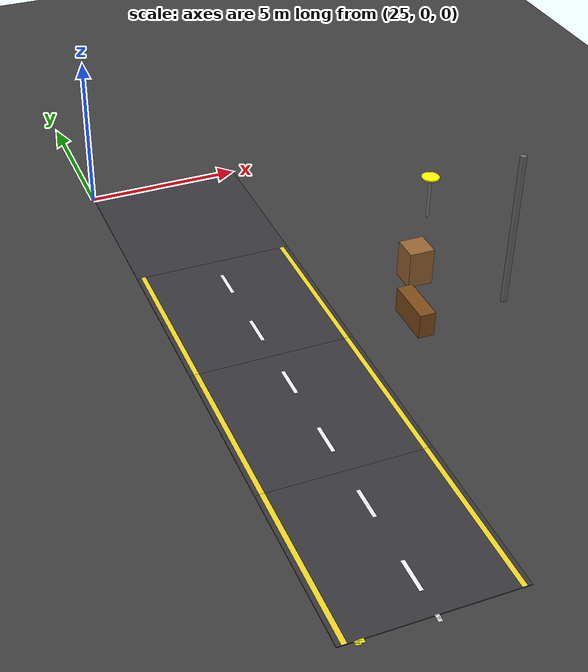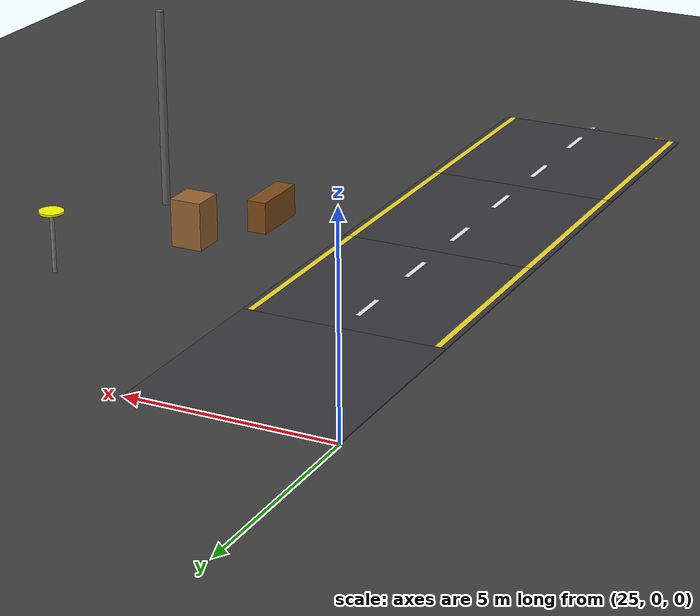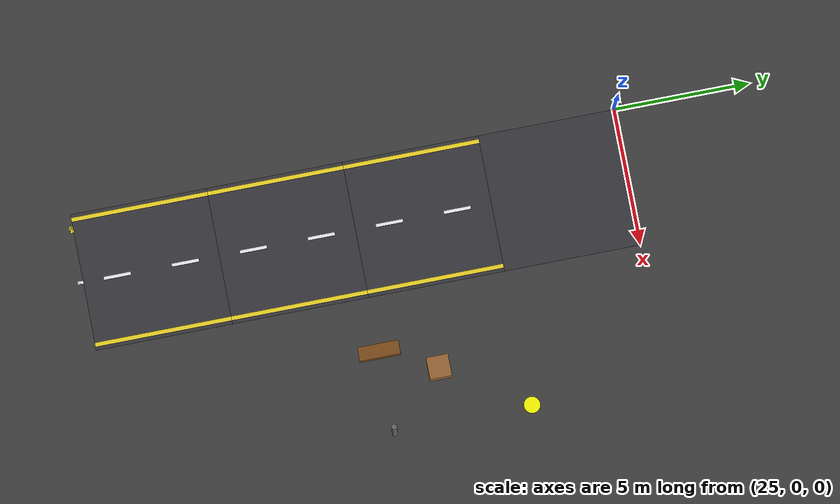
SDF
<sdf version="1.7">
 <world name="compact_city">
  <model name="ground_plane">
   <static>1</static>
   <pose>0 0 0.01 0 -0 0</pose>
   <link name="link">
    <collision name="collision">
     <geometry><plane><normal>0 0 1</normal><size>200 200</size></plane></geometry>
    </collision>
    <visual name="visual">
     <geometry><plane><normal>0 0 1</normal><size>200 200</size></plane></geometry>
     <material>
      <ambient>0.2 0.2 0.2 1</ambient>
      <diffuse>0.25 0.25 0.25 1</diffuse>
      <specular>0.1 0.1 0.1 1</specular>
     </material>
    </visual>
   </link>
  </model>
  <model name="road_tile_55">
   <static>1</static>
   <pose>27.5 -2.5 0.015 0 -0 0</pose>
   <link name="link">
    <collision name="collision"><geometry><box><size>5 5 0.03</size></box></geometry></collision>
    <visual name="visual">
     <geometry><box><size>5 5 0.03</size></box></geometry>
     <material>
      <ambient>0.18 0.18 0.2 1</ambient>
      <diffuse>0.22 0.22 0.24 1</diffuse>
      <specular>0.1 0.1 0.1 1</specular>
     </material>
    </visual>
   </link>
  </model>
  <model name="road_tile_59">
   <static>1</static>
   <pose>27.5 -7.5 0.015 0 -0 1.5708</pose>
   <link name="link">
    <collision name="collision"><geometry><box><size>5 5 0.03</size></box></geometry></collision>
    <visual name="visual">
     <geometry><box><size>5 5 0.03</size></box></geometry>
     <material>
      <ambient>0.18 0.18 0.2 1</ambient>
      <diffuse>0.22 0.22 0.24 1</diffuse>
      <specular>0.1 0.1 0.1 1</specular>
     </material>
    </visual>
   </link>
  </model>
  <model name="road_tile_63">
   <static>1</static>
   <pose>27.5 -12.5 0.015 0 -0 1.5708</pose>
   <link name="link">
    <collision name="collision"><geometry><box><size>5 5 0.03</size></box></geometry></collision>
    <visual name="visual">
     <geometry><box><size>5 5 0.03</size></box></geometry>
     <material>
      <ambient>0.18 0.18 0.2 1</ambient>
      <diffuse>0.22 0.22 0.24 1</diffuse>
      <specular>0.1 0.1 0.1 1</specular>
     </material>
    </visual>
   </link>
  </model>
  <model name="road_tile_67">
   <static>1</static>
   <pose>27.5 -17.5 0.015 0 -0 1.5708</pose>
   <link name="link">
    <collision name="collision"><geometry><box><size>5 5 0.03</size></box></geometry></collision>
    <visual name="visual">
     <geometry><box><size>5 5 0.03</size></box></geometry>
     <material>
      <ambient>0.18 0.18 0.2 1</ambient>
      <diffuse>0.22 0.22 0.24 1</diffuse>
      <specular>0.1 0.1 0.1 1</specular>
     </material>
    </visual>
   </link>
  </model>
  <model name="el_245">
   <static>1</static>
   <pose>25.2 -17.5 0.038 0 -0 1.5708</pose>
   <link name="link">
    <visual name="v">
     <geometry><box><size>5 0.15 0.002</size></box></geometry>
     <material><ambient>0.9 0.8 0.1 1</ambient><diffuse>0.95 0.85 0.15 1</diffuse></material>
    </visual>
   </link>
  </model>
  <model name="el_246">
   <static>1</static>
   <pose>29.8 -17.5 0.038 0 -0 1.5708</pose>
   <link name="link">
    <visual name="v">
     <geometry><box><size>5 0.15 0.002</size></box></geometry>
     <material><ambient>0.9 0.8 0.1 1</ambient><diffuse>0.95 0.85 0.15 1</diffuse></material>
    </visual>
   </link>
  </model>
  <model name="el_247">
   <static>1</static>
   <pose>25.2 -12.5 0.038 0 -0 1.5708</pose>
   <link name="link">
    <visual name="v">
     <geometry><box><size>5 0.15 0.002</size></box></geometry>
     <material><ambient>0.9 0.8 0.1 1</ambient><diffuse>0.95 0.85 0.15 1</diffuse></material>
    </visual>
   </link>
  </model>
  <model name="el_248">
   <static>1</static>
   <pose>29.8 -12.5 0.038 0 -0 1.5708</pose>
   <link name="link">
    <visual name="v">
     <geometry><box><size>5 0.15 0.002</size></box></geometry>
     <material><ambient>0.9 0.8 0.1 1</ambient><diffuse>0.95 0.85 0.15 1</diffuse></material>
    </visual>
   </link>
  </model>
  <model name="el_249">
   <static>1</static>
   <pose>25.2 -7.5 0.038 0 -0 1.5708</pose>
   <link name="link">
    <visual name="v">
     <geometry><box><size>5 0.15 0.002</size></box></geometry>
     <material><ambient>0.9 0.8 0.1 1</ambient><diffuse>0.95 0.85 0.15 1</diffuse></material>
    </visual>
   </link>
  </model>
  <model name="el_250">
   <static>1</static>
   <pose>29.8 -7.5 0.038 0 -0 1.5708</pose>
   <link name="link">
    <visual name="v">
     <geometry><box><size>5 0.15 0.002</size></box></geometry>
     <material><ambient>0.9 0.8 0.1 1</ambient><diffuse>0.95 0.85 0.15 1</diffuse></material>
    </visual>
   </link>
  </model>
  <model name="ld_49">
   <static>1</static>
   <pose>27.5000 -18.7500 0.038 0 -0 1.5708</pose>
   <link name="link">
    <visual name="v">
     <geometry><box><size>1 0.12 0.002</size></box></geometry>
     <material><ambient>1 1 1 1</ambient><diffuse>0.95 0.95 0.95 1</diffuse></material>
    </visual>
   </link>
  </model>
  <model name="ld_50">
   <static>1</static>
   <pose>27.5000 -16.2500 0.038 0 -0 1.5708</pose>
   <link name="link">
    <visual name="v">
     <geometry><box><size>1 0.12 0.002</size></box></geometry>
     <material><ambient>1 1 1 1</ambient><diffuse>0.95 0.95 0.95 1</diffuse></material>
    </visual>
   </link>
  </model>
  <model name="ld_51">
   <static>1</static>
   <pose>27.5000 -13.7500 0.038 0 -0 1.5708</pose>
   <link name="link">
    <visual name="v">
     <geometry><box><size>1 0.12 0.002</size></box></geometry>
     <material><ambient>1 1 1 1</ambient><diffuse>0.95 0.95 0.95 1</diffuse></material>
    </visual>
   </link>
  </model>
  <model name="ld_52">
   <static>1</static>
   <pose>27.5000 -11.2500 0.038 0 -0 1.5708</pose>
   <link name="link">
    <visual name="v">
     <geometry><box><size>1 0.12 0.002</size></box></geometry>
     <material><ambient>1 1 1 1</ambient><diffuse>0.95 0.95 0.95 1</diffuse></material>
    </visual>
   </link>
  </model>
  <model name="ld_53">
   <static>1</static>
   <pose>27.5000 -8.7500 0.038 0 -0 1.5708</pose>
   <link name="link">
    <visual name="v">
     <geometry><box><size>1 0.12 0.002</size></box></geometry>
     <material><ambient>1 1 1 1</ambient><diffuse>0.95 0.95 0.95 1</diffuse></material>
    </visual>
   </link>
  </model>
  <model name="ld_54">
   <static>1</static>
   <pose>27.5000 -6.2500 0.038 0 -0 1.5708</pose>
   <link name="link">
    <visual name="v">
     <geometry><box><size>1 0.12 0.002</size></box></geometry>
     <material><ambient>1 1 1 1</ambient><diffuse>0.95 0.95 0.95 1</diffuse></material>
    </visual>
   </link>
  </model>
  <model name="ac_593">
   <static>1</static>
   <pose>27.4987 -20.0818 0.038 0 -0 1.53811</pose>
   <link name="link">
    <visual name="v">
     <geometry><box><size>0.173411 0.12 0.002</size></box></geometry>
     <material><ambient>1 1 1 1</ambient><diffuse>0.95 0.95 0.95 1</diffuse></material>
    </visual>
   </link>
  </model>
  <model name="ai_614">
   <static>1</static>
   <pose>25.4869 -20.1135 0.038 0 -0 1.34171</pose>
   <link name="link">
    <visual name="v">
     <geometry><box><size>0.04 0.15 0.002</size></box></geometry>
     <material><ambient>0.9 0.8 0.1 1</ambient><diffuse>0.95 0.85 0.15 1</diffuse></material>
    </visual>
   </link>
  </model>
  <model name="ai_615">
   <static>1</static>
   <pose>25.4933 -20.0814 0.038 0 -0 1.40722</pose>
   <link name="link">
    <visual name="v">
     <geometry><box><size>0.04 0.15 0.002</size></box></geometry>
     <material><ambient>0.9 0.8 0.1 1</ambient><diffuse>0.95 0.85 0.15 1</diffuse></material>
    </visual>
   </link>
  </model>
  <model name="ai_616">
   <static>1</static>
   <pose>25.4976 -20.049 0.038 0 -0 1.47262</pose>
   <link name="link">
    <visual name="v">
     <geometry><box><size>0.04 0.15 0.002</size></box></geometry>
     <material><ambient>0.9 0.8 0.1 1</ambient><diffuse>0.95 0.85 0.15 1</diffuse></material>
    </visual>
   </link>
  </model>
  <model name="ai_617">
   <static>1</static>
   <pose>25.4997 -20.0164 0.038 0 -0 1.53811</pose>
   <link name="link">
    <visual name="v">
     <geometry><box><size>0.04 0.15 0.002</size></box></geometry>
     <material><ambient>0.9 0.8 0.1 1</ambient><diffuse>0.95 0.85 0.15 1</diffuse></material>
    </visual>
   </link>
  </model>
  <model name="bench_11">
   <static>1</static>
   <pose>32 -10 0.4 0 0 -1.57</pose>
   <link name="link">
    <collision name="collision"><geometry><box><size>1.5 0.5 0.8</size></box></geometry></collision>
    <visual name="visual">
     <geometry><box><size>1.5 0.5 0.8</size></box></geometry>
     <material><ambient>0.5 0.3 0.1 1</ambient><diffuse>0.5 0.3 0.1 1</diffuse></material>
    </visual>
   </link>
  </model>
  <model name="sign_8">
   <static>1</static>
   <pose>35 -5 1.5 0 0 -1.57</pose>
   <link name="link">
    <collision name="collision">
     <geometry><cylinder><radius>0.3</radius><length>0.05</length></cylinder></geometry>
    </collision>
    <visual name="visual">
     <geometry><cylinder><radius>0.3</radius><length>0.05</length></cylinder></geometry>
     <material><ambient>1 1 0 1</ambient><diffuse>1 1 0 1</diffuse></material>
    </visual>
    <collision name="pole_col">
     <pose>0 0 -0.75 0 -0 0</pose>
     <geometry><cylinder><radius>0.05</radius><length>1.5</length></cylinder></geometry>
    </collision>
    <visual name="pole">
     <pose>0 0 -0.75 0 -0 0</pose>
     <geometry><cylinder><radius>0.05</radius><length>1.5</length></cylinder></geometry>
     <material><ambient>0.5 0.5 0.5 1</ambient><diffuse>0.5 0.5 0.5 1</diffuse></material>
    </visual>
   </link>
  </model>
  <model name="pole_10">
   <static>1</static>
   <pose>35 -10 2.5 0 -0 0</pose>
   <link name="link">
    <collision name="collision">
     <geometry><cylinder><radius>0.1</radius><length>5</length></cylinder></geometry>
    </collision>
    <visual name="visual">
     <geometry><cylinder><radius>0.1</radius><length>5</length></cylinder></geometry>
     <material><ambient>0.3 0.3 0.3 1</ambient><diffuse>0.4 0.4 0.4 1</diffuse></material>
    </visual>
   </link>
  </model>
  <model name="box_8">
   <static>1</static>
   <pose>33 -8 0.6 0 -0 0</pose>
   <link name="link">
    <collision name="collision"><geometry><box><size>0.8 0.8 1.2</size></box></geometry></collision>
    <visual name="visual">
     <geometry><box><size>0.8 0.8 1.2</size></box></geometry>
     <material><ambient>0.6 0.4 0.2 1</ambient><diffuse>0.6 0.4 0.2 1</diffuse></material>
    </visual>
   </link>
  </model>
  <model name="arc_c_408">
   <static>1</static>
   <pose>27.4961 -20.0981 0.038 0 -0 1.5315</pose>
   <link name="link">
    <visual name="visual">
     <geometry><box><size>0.216299 0.12 0.002</size></box></geometry>
     <material><ambient>1 1 1 1</ambient><diffuse>0.95 0.95 0.95 1</diffuse></material>
    </visual>
   </link>
  </model>
  <model name="arc_in_427">
   <static>1</static>
   <pose>25.5954 -20.0705 0.038 0 -0 1.453</pose>
   <link name="link">
    <visual name="visual">
     <geometry><box><size>0.067112 0.15 0.002</size></box></geometry>
     <material><ambient>0.95 0.85 0.1 1</ambient><diffuse>1 0.9 0.15 1</diffuse></material>
    </visual>
   </link>
  </model>
  <model name="arc_in_428">
   <static>1</static>
   <pose>25.5991 -20.0235 0.038 0 -0 1.5315</pose>
   <link name="link">
    <visual name="visual">
     <geometry><box><size>0.067112 0.15 0.002</size></box></geometry>
     <material><ambient>0.95 0.85 0.1 1</ambient><diffuse>1 0.9 0.15 1</diffuse></material>
    </visual>
   </link>
  </model>
 </world>
</sdf>
